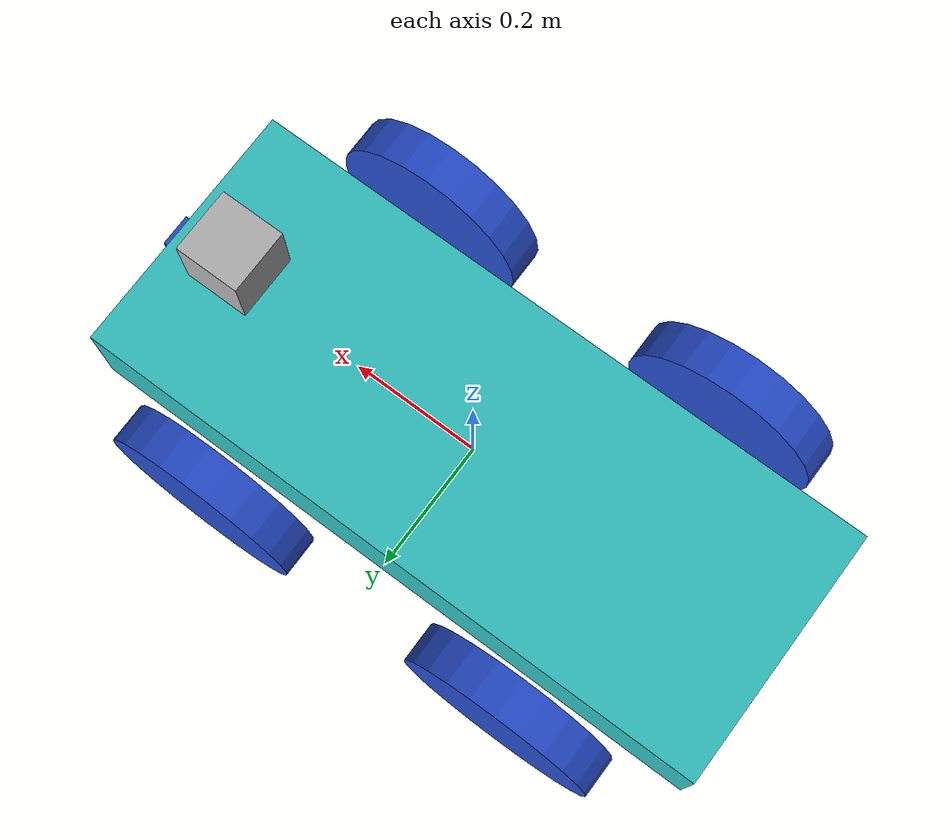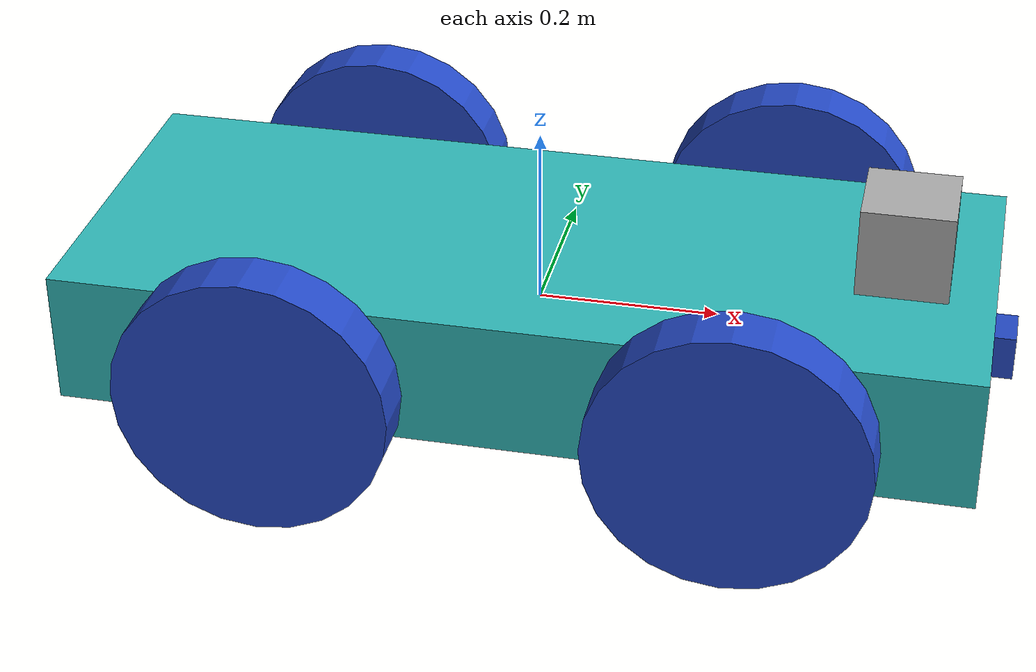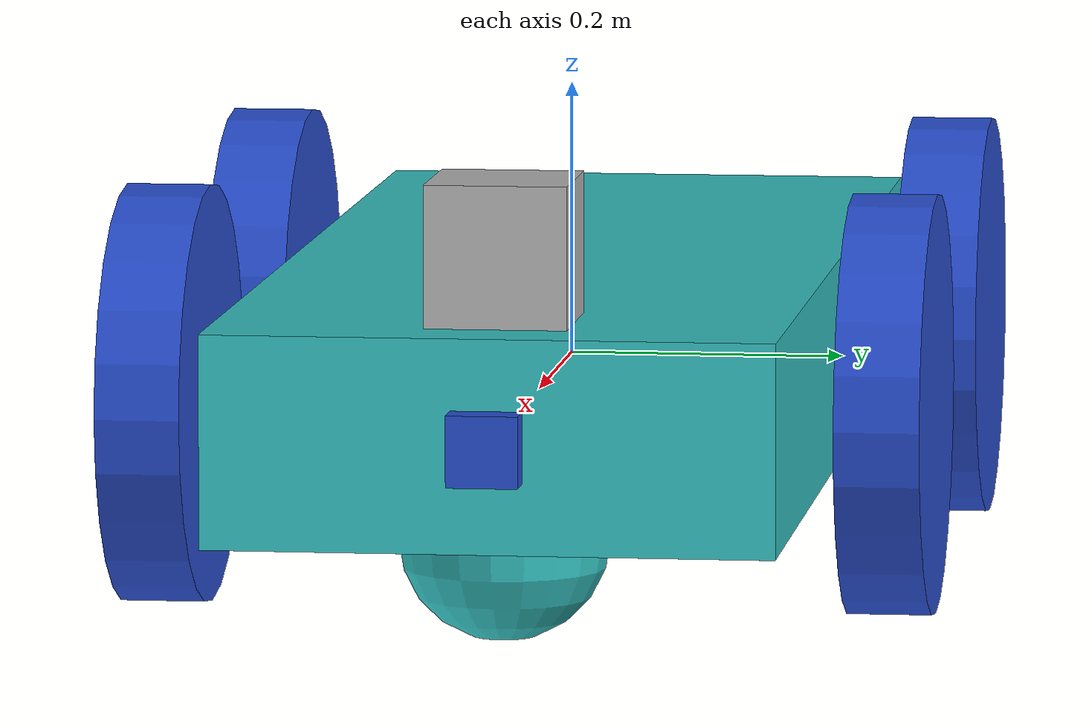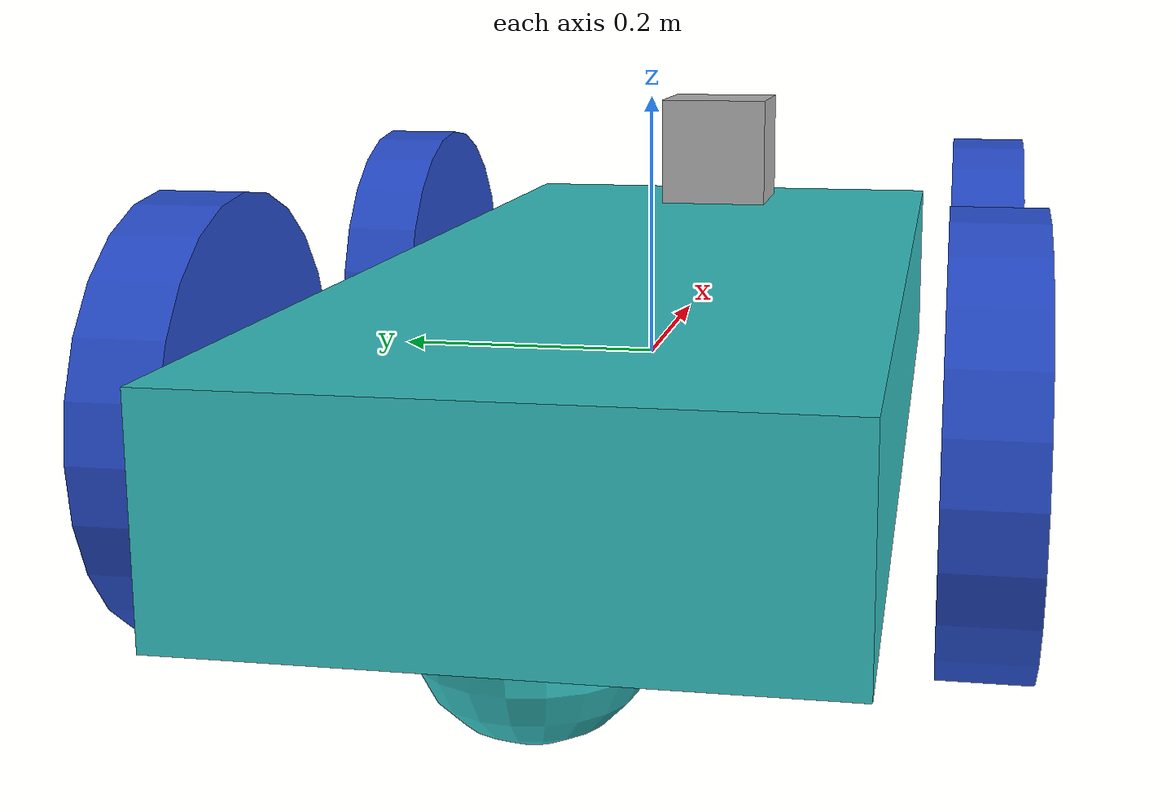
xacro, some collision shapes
<?xml version='1.0'?>

<robot name="my_robot" xmlns:xacro="http://www.ros.org/wiki/xacro">
  <xacro:include filename="$(find my_robot)/urdf/my_robot.gazebo" />
  <link name="robot_footprint"></link>

  <joint name="robot_footprint_joint" type="fixed">
    <origin xyz="0 0 0" rpy="0 0 0" />
    <parent link="robot_footprint"/>
    <child link="chassis" />
  </joint>

  <link name='chassis'>
    <pose>0 0 0.15 0 0 0</pose>

    <inertial>
      <mass value="20.0"/>
      <origin xyz="0.0 0 0" rpy=" 0 0 0"/>
      <inertia
          ixx="0.1" ixy="0" ixz="0"
          iyy="0.1" iyz="0"
          izz="0.1"
      />
    </inertial>

    <collision name='collision'>
      <origin xyz="0 0 0" rpy=" 0 0 0"/>
      <geometry>
        <box size="1 .4 .15"/>
      </geometry>
    </collision>

    <visual name='chassis_visual'>
      <origin xyz="0 0 0" rpy=" 0 0 0"/>
      <geometry>
        <box size="1 .4 .15"/>
      </geometry>
    </visual>

    <collision name='back_caster_collision'>
      <origin xyz="-0.4 0 -0.075" rpy=" 0 0 0"/>
      <geometry>
        <sphere radius="0.0749"/>
      </geometry>
    </collision>

    <visual name='back_caster_visual'>
      <origin xyz="-0.4 0 -0.075" rpy=" 0 0 0"/>
      <geometry>
        <sphere radius="0.075"/>
      </geometry>
    </visual>

    <collision name='front_caster_collision'>
      <origin xyz="0.4 0 -0.075" rpy=" 0 0 0"/>
      <geometry>
        <sphere radius="0.0749"/>
      </geometry>
    </collision>

    <visual name='front_caster_visual'>
      <origin xyz="0.4 0 -0.075" rpy=" 0 0 0"/>
      <geometry>
        <sphere radius="0.075"/>
      </geometry>
    </visual>

  </link>

	<link name="left_front_wheel">
		<inertial>
			<mass value="5.0"/>
			<origin xyz="0 0 0" rpy="0 1.5707 1.5707"/>
			<inertia ixx="0.1" ixy="0" ixz="0" iyy="0.1" iyz="0" izz="0.1" />
		</inertial>
		<collision name="left_front_wheel_collision">
			<origin xyz="0 0 0" rpy="0 1.5707 1.5707"/>
			<geometry>
				<cylinder radius="0.15" length="0.06"/>
			</geometry>
		</collision>
		<visual name="left_front_wheel_visual">
			<origin xyz="0 0 0" rpy="0 1.5707 1.5707"/>
			<geometry>
				<cylinder radius="0.15" length="0.06"/>
			</geometry>
		</visual>
	</link>

        <link name="left_back_wheel">
		<inertial>
			<mass value="5.0"/>
			<origin xyz="0 0 0" rpy="0 1.5707 1.5707"/>
			<inertia ixx="0.1" ixy="0" ixz="0" iyy="0.1" iyz="0" izz="0.1" />
		</inertial>
		<collision name="left_back_wheel_collision">
			<origin xyz="0 0 0" rpy="0 1.5707 1.5707"/>
			<geometry>
				<cylinder radius="0.15" length="0.06"/>
			</geometry>
		</collision>
		<visual name="left_back_wheel_visual">
			<origin xyz="0 0 0" rpy="0 1.5707 1.5707"/>
			<geometry>
				<cylinder radius="0.15" length="0.06"/>
			</geometry>
		</visual>
	</link>
	<link name="right_front_wheel">
		<inertial>
			<mass value="5.0"/>
			<origin xyz="0 0 0" rpy="0 1.5707 1.5707"/>
			<inertia ixx="0.1" ixy="0" ixz="0" iyy="0.1" iyz="0" izz="0.1" />
		</inertial>
		<collision name="right_front_wheel_collision">
			<origin xyz="0 0 0" rpy="0 1.5707 1.5707"/>
			<geometry>
				<cylinder radius="0.15" length="0.06"/>
			</geometry>
		</collision>
		<visual name="right_front_wheel_visual">
			<origin xyz="0 0 0" rpy="0 1.5707 1.5707"/>
			<geometry>
				<cylinder radius="0.15" length="0.06"/>
			</geometry>
		</visual>
	</link>
        <link name="right_back_wheel">
		<inertial>
			<mass value="5.0"/>
			<origin xyz="0 0 0" rpy="0 1.5707 1.5707"/>
			<inertia ixx="0.1" ixy="0" ixz="0" iyy="0.1" iyz="0" izz="0.1" />
		</inertial>
		<collision name="right_back_wheel_collision">
			<origin xyz="0 0 0" rpy="0 1.5707 1.5707"/>
			<geometry>
				<cylinder radius="0.15" length="0.06"/>
			</geometry>
		</collision>
		<visual name="right_back_wheel_visual">
			<origin xyz="0 0 0" rpy="0 1.5707 1.5707"/>
			<geometry>
				<cylinder radius="0.15" length="0.06"/>
			</geometry>
		</visual>
	</link>

	<joint type="continuous" name="left_front_wheel_hinge">
		<origin xyz="0.25 0.26 0" rpy="0 0 0"/>
		<child link="left_front_wheel"/>
		<parent link="chassis"/>
		<axis xyz="0 1 0" rpy="0 0 0"/>
		<limit effort="10000" velocity="1000"/>
		<dynamics damping="1.0" friction="1.0"/>
	</joint>

	<joint type="continuous" name="right_front_wheel_hinge">
		<origin xyz="0.25 -0.26 0" rpy="0 0 0"/>
		<child link="right_front_wheel"/>
		<parent link="chassis"/>
		<axis xyz="0 1 0" rpy="0 0 0"/>
		<limit effort="10000" velocity="1000"/>
		<dynamics damping="1.0" friction="1.0"/>
	</joint>

        <joint type="continuous" name="left_back_wheel_hinge">
		<origin xyz="-0.25 0.26 0" rpy="0 0 0"/>
		<child link="left_back_wheel"/>
		<parent link="chassis"/>
		<axis xyz="0 1 0" rpy="0 0 0"/>
		<limit effort="10000" velocity="1000"/>
		<dynamics damping="1.0" friction="1.0"/>
	</joint>

	<joint type="continuous" name="right_back_wheel_hinge">
		<origin xyz="-0.25 -0.26 0" rpy="0 0 0"/>
		<child link="right_back_wheel"/>
		<parent link="chassis"/>
		<axis xyz="0 1 0" rpy="0 0 0"/>
		<limit effort="10000" velocity="1000"/>
		<dynamics damping="1.0" friction="1.0"/>
	</joint>
        <link name="camera">
		<inertial>
			<mass value="0.1"/>
			<origin xyz="0 0 0" rpy="0 0 0"/>
			<inertia ixx="1e-6" ixy="0" ixz="0" iyy="1e-6" iyz="0" izz="1e-6" />
			<box_inertia m="0.1" x="0.05" y="0.05" z="0.05"/>
		</inertial>
		<collision name="camera_collision">
			<origin xyz="0 0 0" rpy="0 0 0"/>
			<geometry>
				<box size="0.05 0.05 0.05"/>
			</geometry>
		</collision>
		<visual name="camera_visual">
			<origin xyz="0 0 0" rpy="0 0 0"/>
			<geometry>
				<box size="0.05 0.05 0.05"/>
			</geometry>
		</visual>
	</link>

	<joint type="fixed" name="camera_joint">
		<origin xyz="0.5 0 0" rpy="0 0 0"/>
		<child link="camera"/>
		<parent link="chassis"/>
		<axis xyz="0 1 0" rpy="0 0 0"/>
	</joint>

	<link name="hokuyo">
		<inertial>
			<mass value="1e-5"/>
			<origin xyz="0 0 0" rpy="0 0 0"/>
			<inertia ixx="1e-6" ixy="0" ixz="0" iyy="1e-6" iyz="0" izz="1e-6" />
		</inertial>
		<collision name="hokuyo_collision">
			<origin xyz="0 0 0" rpy="0 0 0"/>
			<geometry>
				<box size="0.1 0.1 0.1"/>
			</geometry>
		</collision>
		<visual name="hokuyo_visual">
			<origin xyz="0 0 0" rpy="0 0 0"/>
			<geometry>
				<mesh filename="package://my_robot/meshes/hokuyo.dae"/>
			</geometry>
		</visual>
	</link>

	<joint type="fixed" name="hokuyo_joint">
		<origin xyz="0.4 0 0.125" rpy="0 0 0"/>
		<child link="hokuyo"/>
		<parent link="chassis"/>
		<axis xyz="0 1 0" rpy="0 0 0"/>
	</joint>

	<link name="camera_link_optical">
	</link>

	<joint name="camera_optical_joint" type="fixed">
		<origin xyz="0 0 0" rpy="-1.5707 0 -1.5707"/>
		<parent link="camera"/>
		<child link="camera_link_optical"/>
	</joint>

<gazebo reference="left_front_wheel">
    <material>Gazebo/Blue</material>
</gazebo>

<gazebo reference="left_back_wheel">
    <material>Gazebo/Blue</material>
</gazebo>

<gazebo reference="right_front_wheel">
    <material>Gazebo/Blue</material>
</gazebo>

<gazebo reference="right_back_wheel">
    <material>Gazebo/Blue</material>
</gazebo>

<gazebo reference="chassis">
    <material>Gazebo/Turquoise</material>
</gazebo>

<gazebo reference="camera">
    <material>Gazebo/Blue</material>
</gazebo>

</robot>
